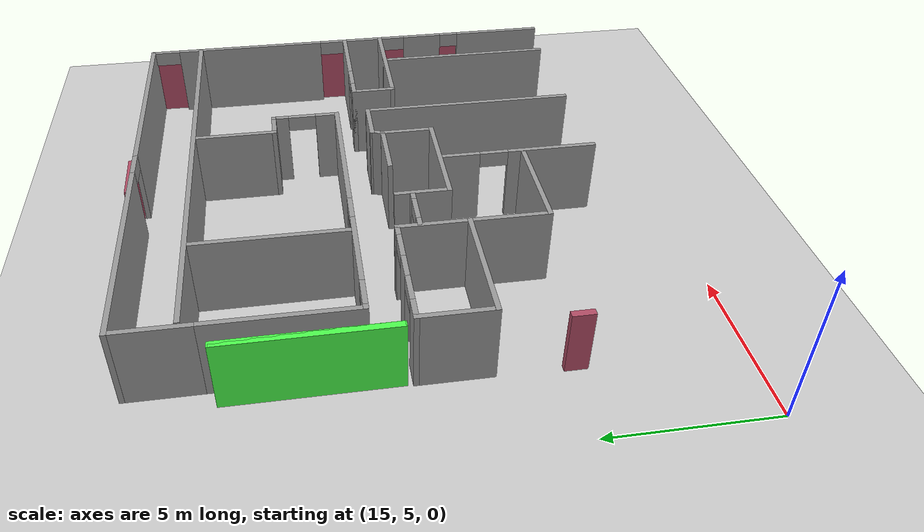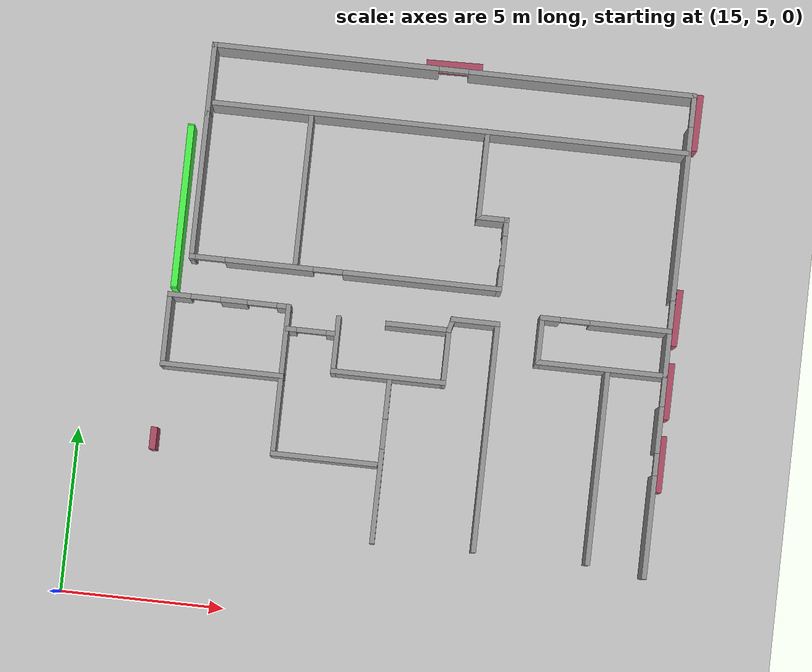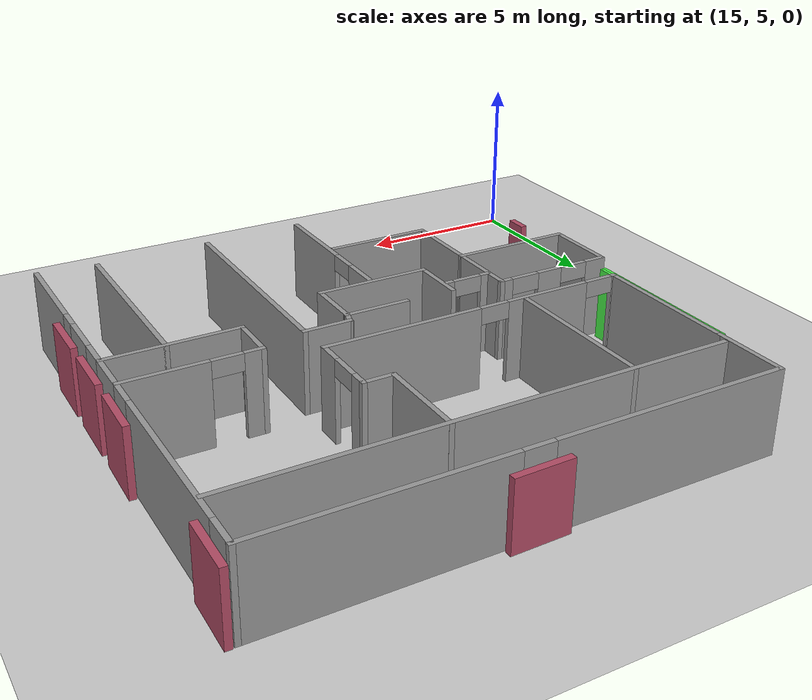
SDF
<sdf version="1.6">
 <world name="default">
  <model name="ground_plane">
   <pose>0 0 0.001 0 -0 0</pose>
   <static>1</static>
   <link name="link">
    <collision name="collision">
     <geometry><plane><normal>0 0 1</normal><size>100 100</size></plane></geometry>
     <surface><friction><ode><mu>100</mu><mu2>50</mu2></ode></friction></surface>
    </collision>
    <visual name="visual">
     <cast_shadows>0</cast_shadows>
     <geometry><plane><normal>0 0 1</normal><size>100 100</size></plane></geometry>
     <material>
      <script><uri>file://media/materials/scripts/gazebo.material</uri><name>Gazebo/Grey</name></script>
     </material>
    </visual>
   </link>
  </model>
  <model name="fin_se1f1.sdf">
   <pose>1.8125 -2.2901 0 0 -0 0</pose>
   <link name="Wall_16">
    <pose>30.7504 16.9246 0 0 -0 1.5708</pose>
    <visual name="Wall_16_Visual_0">
     <pose>-5.81054 0 1.25 0 -0 0</pose>
     <geometry><box><size>3.12893 0.15 2.5</size></box></geometry>
     <material>
      <script><uri>file://media/materials/scripts/gazebo.material</uri><name>Gazebo/Grey</name></script>
      <ambient>1 1 1 1</ambient>
     </material>
     <meta><layer>0</layer></meta>
    </visual>
    <collision name="Wall_16_Collision_0">
     <geometry><box><size>3.12893 0.15 2.5</size></box></geometry>
     <pose>-5.81054 0 1.25 0 -0 0</pose>
    </collision>
    <visual name="Wall_16_Visual_1">
     <pose>-2.86079 0 1.25 0 -0 0</pose>
     <geometry><box><size>1.41306 0.15 2.5</size></box></geometry>
     <material>
      <script><uri>file://media/materials/scripts/gazebo.material</uri><name>Gazebo/Grey</name></script>
      <ambient>1 1 1 1</ambient>
     </material>
     <meta><layer>0</layer></meta>
    </visual>
    <collision name="Wall_16_Collision_1">
     <geometry><box><size>1.41306 0.15 2.5</size></box></geometry>
     <pose>-2.86079 0 1.25 0 -0 0</pose>
    </collision>
    <visual name="Wall_16_Visual_2">
     <pose>-0.547733 0 1.25 0 -0 0</pose>
     <geometry><box><size>1.41306 0.15 2.5</size></box></geometry>
     <material>
      <script><uri>file://media/materials/scripts/gazebo.material</uri><name>Gazebo/Grey</name></script>
      <ambient>1 1 1 1</ambient>
     </material>
     <meta><layer>0</layer></meta>
    </visual>
    <collision name="Wall_16_Collision_2">
     <geometry><box><size>1.41306 0.15 2.5</size></box></geometry>
     <pose>-0.547733 0 1.25 0 -0 0</pose>
    </collision>
    <visual name="Wall_16_Visual_3">
     <pose>3.70629 0 1.25 0 -0 0</pose>
     <geometry><box><size>5.29498 0.15 2.5</size></box></geometry>
     <material>
      <script><uri>file://media/materials/scripts/gazebo.material</uri><name>Gazebo/Grey</name></script>
      <ambient>1 1 1 1</ambient>
     </material>
     <meta><layer>0</layer></meta>
    </visual>
    <collision name="Wall_16_Collision_3">
     <geometry><box><size>5.29498 0.15 2.5</size></box></geometry>
     <pose>3.70629 0 1.25 0 -0 0</pose>
    </collision>
    <visual name="Wall_16_Visual_4">
     <pose>7.31439 0 1.25 0 -0 0</pose>
     <geometry><box><size>0.121222 0.15 2.5</size></box></geometry>
     <material>
      <script><uri>file://media/materials/scripts/gazebo.material</uri><name>Gazebo/Grey</name></script>
      <ambient>1 1 1 1</ambient>
     </material>
     <meta><layer>0</layer></meta>
    </visual>
    <collision name="Wall_16_Collision_4">
     <geometry><box><size>0.121222 0.15 2.5</size></box></geometry>
     <pose>7.31439 0 1.25 0 -0 0</pose>
    </collision>
    <visual name="Wall_16_Visual_5">
     <pose>-3.9067 0 2.25 0 -0 0</pose>
     <geometry><box><size>0.678751 0.15 0.5</size></box></geometry>
     <material>
      <script><uri>file://media/materials/scripts/gazebo.material</uri><name>Gazebo/Grey</name></script>
      <ambient>1 1 1 1</ambient>
     </material>
     <meta><layer>0</layer></meta>
    </visual>
    <collision name="Wall_16_Collision_5">
     <geometry><box><size>0.678751 0.15 0.5</size></box></geometry>
     <pose>-3.9067 0 2.25 0 -0 0</pose>
    </collision>
    <visual name="Wall_16_Visual_6">
     <pose>-1.70426 0 2.25 0 -0 0</pose>
     <geometry><box><size>0.9 0.15 0.5</size></box></geometry>
     <material>
      <script><uri>file://media/materials/scripts/gazebo.material</uri><name>Gazebo/Grey</name></script>
      <ambient>1 1 1 1</ambient>
     </material>
     <meta><layer>0</layer></meta>
    </visual>
    <collision name="Wall_16_Collision_6">
     <geometry><box><size>0.9 0.15 0.5</size></box></geometry>
     <pose>-1.70426 0 2.25 0 -0 0</pose>
    </collision>
    <visual name="Wall_16_Visual_7">
     <pose>0.608797 0 2.25 0 -0 0</pose>
     <geometry><box><size>0.9 0.15 0.5</size></box></geometry>
     <material>
      <script><uri>file://media/materials/scripts/gazebo.material</uri><name>Gazebo/Grey</name></script>
      <ambient>1 1 1 1</ambient>
     </material>
     <meta><layer>0</layer></meta>
    </visual>
    <collision name="Wall_16_Collision_7">
     <geometry><box><size>0.9 0.15 0.5</size></box></geometry>
     <pose>0.608797 0 2.25 0 -0 0</pose>
    </collision>
    <visual name="Wall_16_Visual_8">
     <pose>6.80378 0 2.25 0 -0 0</pose>
     <geometry><box><size>0.9 0.15 0.5</size></box></geometry>
     <material>
      <script><uri>file://media/materials/scripts/gazebo.material</uri><name>Gazebo/Grey</name></script>
      <ambient>1 1 1 1</ambient>
     </material>
     <meta><layer>0</layer></meta>
    </visual>
    <collision name="Wall_16_Collision_8">
     <geometry><box><size>0.9 0.15 0.5</size></box></geometry>
     <pose>6.80378 0 2.25 0 -0 0</pose>
    </collision>
   </link>
   <link name="Wall_17">
    <pose>23.4504 24.2246 0 0 -0 3.14159</pose>
    <visual name="Wall_17_Visual_0">
     <pose>-3.90372 0 1.25 0 -0 0</pose>
     <geometry><box><size>6.94256 0.15 2.5</size></box></geometry>
     <material>
      <script><uri>file://media/materials/scripts/gazebo.material</uri><name>Gazebo/Grey</name></script>
      <ambient>1 1 1 1</ambient>
     </material>
     <meta><layer>0</layer></meta>
    </visual>
    <collision name="Wall_17_Collision_0">
     <geometry><box><size>6.94256 0.15 2.5</size></box></geometry>
     <pose>-3.90372 0 1.25 0 -0 0</pose>
    </collision>
    <visual name="Wall_17_Visual_1">
     <pose>3.92128 0 1.25 0 -0 0</pose>
     <geometry><box><size>6.90744 0.15 2.5</size></box></geometry>
     <material>
      <script><uri>file://media/materials/scripts/gazebo.material</uri><name>Gazebo/Grey</name></script>
      <ambient>1 1 1 1</ambient>
     </material>
     <meta><layer>0</layer></meta>
    </visual>
    <collision name="Wall_17_Collision_1">
     <geometry><box><size>6.90744 0.15 2.5</size></box></geometry>
     <pose>3.92128 0 1.25 0 -0 0</pose>
    </collision>
    <visual name="Wall_17_Visual_2">
     <pose>0.017557 0 2.25 0 -0 0</pose>
     <geometry><box><size>0.9 0.15 0.5</size></box></geometry>
     <material>
      <script><uri>file://media/materials/scripts/gazebo.material</uri><name>Gazebo/Grey</name></script>
      <ambient>1 1 1 1</ambient>
     </material>
     <meta><layer>0</layer></meta>
    </visual>
    <collision name="Wall_17_Collision_2">
     <geometry><box><size>0.9 0.15 0.5</size></box></geometry>
     <pose>0.017557 0 2.25 0 -0 0</pose>
    </collision>
   </link>
   <link name="Wall_18">
    <collision name="Wall_18_Collision">
     <geometry><box><size>2.25 0.15 2.5</size></box></geometry>
     <pose>0 0 1.25 0 -0 0</pose>
    </collision>
    <visual name="Wall_18_Visual">
     <pose>0 0 1.25 0 -0 0</pose>
     <geometry><box><size>2.25 0.15 2.5</size></box></geometry>
     <material>
      <script><uri>file://media/materials/scripts/gazebo.material</uri><name>Gazebo/Grey</name></script>
      <ambient>1 1 1 1</ambient>
     </material>
     <meta><layer>0</layer></meta>
    </visual>
    <pose>16.1504 23.1746 0 0 0 -1.5708</pose>
   </link>
   <link name="Wall_233">
    <pose>19.9645 15.9042 0.001 0 -0 0</pose>
    <visual name="Wall_233_Visual_0">
     <pose>-0.585512 0 1.25 0 -0 0</pose>
     <geometry><box><size>0.328976 0.15 2.5</size></box></geometry>
     <material>
      <script><uri>file://media/materials/scripts/gazebo.material</uri><name>Gazebo/Grey</name></script>
      <ambient>1 1 1 1</ambient>
     </material>
     <meta><layer>0</layer></meta>
    </visual>
    <collision name="Wall_233_Collision_0">
     <geometry><box><size>0.328976 0.15 2.5</size></box></geometry>
     <pose>-0.585512 0 1.25 0 -0 0</pose>
    </collision>
    <visual name="Wall_233_Visual_1">
     <pose>0.614488 0 1.25 0 -0 0</pose>
     <geometry><box><size>0.271024 0.15 2.5</size></box></geometry>
     <material>
      <script><uri>file://media/materials/scripts/gazebo.material</uri><name>Gazebo/Grey</name></script>
      <ambient>1 1 1 1</ambient>
     </material>
     <meta><layer>0</layer></meta>
    </visual>
    <collision name="Wall_233_Collision_1">
     <geometry><box><size>0.271024 0.15 2.5</size></box></geometry>
     <pose>0.614488 0 1.25 0 -0 0</pose>
    </collision>
    <visual name="Wall_233_Visual_2">
     <pose>0.028976 0 2.25 0 -0 0</pose>
     <geometry><box><size>0.9 0.15 0.5</size></box></geometry>
     <material>
      <script><uri>file://media/materials/scripts/gazebo.material</uri><name>Gazebo/Grey</name></script>
      <ambient>1 1 1 1</ambient>
     </material>
     <meta><layer>0</layer></meta>
    </visual>
    <collision name="Wall_233_Collision_2">
     <geometry><box><size>0.9 0.15 0.5</size></box></geometry>
     <pose>0.028976 0 2.25 0 -0 0</pose>
    </collision>
   </link>
   <link name="Wall_32">
    <collision name="Wall_32_Collision">
     <geometry><box><size>4 0.15 2.5</size></box></geometry>
     <pose>0 0 1.25 0 -0 0</pose>
    </collision>
    <visual name="Wall_32_Visual">
     <pose>0 0 1.25 0 -0 0</pose>
     <geometry><box><size>4 0.15 2.5</size></box></geometry>
     <material>
      <script><uri>file://media/materials/scripts/gazebo.material</uri><name>Gazebo/Grey</name></script>
      <ambient>1 1 1 1</ambient>
     </material>
     <meta><layer>0</layer></meta>
    </visual>
    <pose>28.8116 15.7048 0 0 -0 3.14159</pose>
   </link>
   <link name="Wall_33">
    <collision name="Wall_33_Collision">
     <geometry><box><size>1.5 0.15 2.5</size></box></geometry>
     <pose>0 0 1.25 0 -0 0</pose>
    </collision>
    <visual name="Wall_33_Visual">
     <pose>0 0 1.25 0 -0 0</pose>
     <geometry><box><size>1.5 0.15 2.5</size></box></geometry>
     <material>
      <script><uri>file://media/materials/scripts/gazebo.material</uri><name>Gazebo/Grey</name></script>
      <ambient>1 1 1 1</ambient>
     </material>
     <meta><layer>0</layer></meta>
    </visual>
    <pose>26.8866 16.3798 0 0 -0 1.5708</pose>
   </link>
   <link name="Wall_34">
    <pose>28.8116 17.0548 0.001 0 -0 0</pose>
    <visual name="Wall_34_Visual_0">
     <pose>-1.6918 0 1.25 0 -0 0</pose>
     <geometry><box><size>0.616404 0.15 2.5</size></box></geometry>
     <material>
      <script><uri>file://media/materials/scripts/gazebo.material</uri><name>Gazebo/Grey</name></script>
      <ambient>1 1 1 1</ambient>
     </material>
     <meta><layer>0</layer></meta>
    </visual>
    <collision name="Wall_34_Collision_0">
     <geometry><box><size>0.616404 0.15 2.5</size></box></geometry>
     <pose>-1.6918 0 1.25 0 -0 0</pose>
    </collision>
    <visual name="Wall_34_Visual_1">
     <pose>0.758202 0 1.25 0 -0 0</pose>
     <geometry><box><size>2.4836 0.15 2.5</size></box></geometry>
     <material>
      <script><uri>file://media/materials/scripts/gazebo.material</uri><name>Gazebo/Grey</name></script>
      <ambient>1 1 1 1</ambient>
     </material>
     <meta><layer>0</layer></meta>
    </visual>
    <collision name="Wall_34_Collision_1">
     <geometry><box><size>2.4836 0.15 2.5</size></box></geometry>
     <pose>0.758202 0 1.25 0 -0 0</pose>
    </collision>
    <visual name="Wall_34_Visual_2">
     <pose>-0.933596 0 2.25 0 -0 0</pose>
     <geometry><box><size>0.9 0.15 0.5</size></box></geometry>
     <material>
      <script><uri>file://media/materials/scripts/gazebo.material</uri><name>Gazebo/Grey</name></script>
      <ambient>1 1 1 1</ambient>
     </material>
     <meta><layer>0</layer></meta>
    </visual>
    <collision name="Wall_34_Collision_2">
     <geometry><box><size>0.9 0.15 0.5</size></box></geometry>
     <pose>-0.933596 0 2.25 0 -0 0</pose>
    </collision>
   </link>
   <link name="Wall_36">
    <collision name="Wall_36_Collision">
     <geometry><box><size>6 0.15 2.5</size></box></geometry>
     <pose>0 0 1.25 0 -0 0</pose>
    </collision>
    <visual name="Wall_36_Visual">
     <pose>0 0 1.25 0 -0 0</pose>
     <geometry><box><size>6 0.15 2.5</size></box></geometry>
     <material>
      <script><uri>file://media/materials/scripts/gazebo.material</uri><name>Gazebo/Grey</name></script>
      <ambient>1 1 1 1</ambient>
     </material>
     <meta><layer>0</layer></meta>
    </visual>
    <pose>29.0138 12.7798 0 0 0 -1.5708</pose>
   </link>
   <link name="Wall_38">
    <pose>17.4309 16.5662 0 0 -0 3.14159</pose>
    <visual name="Wall_38_Visual_0">
     <pose>-1.65937 0 1.25 0 -0 0</pose>
     <geometry><box><size>0.431262 0.15 2.5</size></box></geometry>
     <material>
      <script><uri>file://media/materials/scripts/gazebo.material</uri><name>Gazebo/Grey</name></script>
      <ambient>1 1 1 1</ambient>
     </material>
     <meta><layer>0</layer></meta>
    </visual>
    <collision name="Wall_38_Collision_0">
     <geometry><box><size>0.431262 0.15 2.5</size></box></geometry>
     <pose>-1.65937 0 1.25 0 -0 0</pose>
    </collision>
    <visual name="Wall_38_Visual_1">
     <pose>-0.138911 0 1.25 0 -0 0</pose>
     <geometry><box><size>0.809654 0.15 2.5</size></box></geometry>
     <material>
      <script><uri>file://media/materials/scripts/gazebo.material</uri><name>Gazebo/Grey</name></script>
      <ambient>1 1 1 1</ambient>
     </material>
     <meta><layer>0</layer></meta>
    </visual>
    <collision name="Wall_38_Collision_1">
     <geometry><box><size>0.809654 0.15 2.5</size></box></geometry>
     <pose>-0.138911 0 1.25 0 -0 0</pose>
    </collision>
    <visual name="Wall_38_Visual_2">
     <pose>1.52046 0 1.25 0 -0 0</pose>
     <geometry><box><size>0.709084 0.15 2.5</size></box></geometry>
     <material>
      <script><uri>file://media/materials/scripts/gazebo.material</uri><name>Gazebo/Grey</name></script>
      <ambient>1 1 1 1</ambient>
     </material>
     <meta><layer>0</layer></meta>
    </visual>
    <collision name="Wall_38_Collision_2">
     <geometry><box><size>0.709084 0.15 2.5</size></box></geometry>
     <pose>1.52046 0 1.25 0 -0 0</pose>
    </collision>
    <visual name="Wall_38_Visual_3">
     <pose>-0.993738 0 2.25 0 -0 0</pose>
     <geometry><box><size>0.9 0.15 0.5</size></box></geometry>
     <material>
      <script><uri>file://media/materials/scripts/gazebo.material</uri><name>Gazebo/Grey</name></script>
      <ambient>1 1 1 1</ambient>
     </material>
     <meta><layer>0</layer></meta>
    </visual>
    <collision name="Wall_38_Collision_3">
     <geometry><box><size>0.9 0.15 0.5</size></box></geometry>
     <pose>-0.993738 0 2.25 0 -0 0</pose>
    </collision>
    <visual name="Wall_38_Visual_4">
     <pose>0.715916 0 2.25 0 -0 0</pose>
     <geometry><box><size>0.9 0.15 0.5</size></box></geometry>
     <material>
      <script><uri>file://media/materials/scripts/gazebo.material</uri><name>Gazebo/Grey</name></script>
      <ambient>1 1 1 1</ambient>
     </material>
     <meta><layer>0</layer></meta>
    </visual>
    <collision name="Wall_38_Collision_4">
     <geometry><box><size>0.9 0.15 0.5</size></box></geometry>
     <pose>0.715916 0 2.25 0 -0 0</pose>
    </collision>
   </link>
   <link name="Wall_39">
    <collision name="Wall_39_Collision">
     <geometry><box><size>2.25 0.15 2.5</size></box></geometry>
     <pose>0 0 1.25 0 -0 0</pose>
    </collision>
    <visual name="Wall_39_Visual">
     <pose>0 0 1.25 0 -0 0</pose>
     <geometry><box><size>2.25 0.15 2.5</size></box></geometry>
     <material>
      <script><uri>file://media/materials/scripts/gazebo.material</uri><name>Gazebo/Grey</name></script>
      <ambient>1 1 1 1</ambient>
     </material>
     <meta><layer>0</layer></meta>
    </visual>
    <pose>15.6309 15.5162 0 0 0 -1.5708</pose>
   </link>
   <link name="Wall_40">
    <collision name="Wall_40_Collision">
     <geometry><box><size>3.75 0.15 2.5</size></box></geometry>
     <pose>0 0 1.25 0 -0 0</pose>
    </collision>
    <visual name="Wall_40_Visual">
     <pose>0 0 1.25 0 -0 0</pose>
     <geometry><box><size>3.75 0.15 2.5</size></box></geometry>
     <material>
      <script><uri>file://media/materials/scripts/gazebo.material</uri><name>Gazebo/Grey</name></script>
      <ambient>1 1 1 1</ambient>
     </material>
     <meta><layer>0</layer></meta>
    </visual>
    <pose>17.4309 14.4662 0.001 0 -0 0</pose>
   </link>
   <link name="Wall_41">
    <collision name="Wall_41_Collision">
     <geometry><box><size>2.25 0.15 2.5</size></box></geometry>
     <pose>0 0 1.25 0 -0 0</pose>
    </collision>
    <visual name="Wall_41_Visual">
     <pose>0 0 1.25 0 -0 0</pose>
     <geometry><box><size>2.25 0.15 2.5</size></box></geometry>
     <material>
      <script><uri>file://media/materials/scripts/gazebo.material</uri><name>Gazebo/Grey</name></script>
      <ambient>1 1 1 1</ambient>
     </material>
     <meta><layer>0</layer></meta>
    </visual>
    <pose>19.2309 15.5162 0 0 -0 1.5708</pose>
   </link>
   <link name="Wall_43">
    <collision name="Wall_43_Collision">
     <geometry><box><size>1.75 0.15 2.5</size></box></geometry>
     <pose>0 0 1.25 0 -0 0</pose>
    </collision>
    <visual name="Wall_43_Visual">
     <pose>0 0 1.25 0 -0 0</pose>
     <geometry><box><size>1.75 0.15 2.5</size></box></geometry>
     <material>
      <script><uri>file://media/materials/scripts/gazebo.material</uri><name>Gazebo/Grey</name></script>
      <ambient>1 1 1 1</ambient>
     </material>
     <meta><layer>0</layer></meta>
    </visual>
    <pose>20.7691 15.5816 0 0 0 -1.5708</pose>
   </link>
   <link name="Wall_44">
    <collision name="Wall_44_Collision">
     <geometry><box><size>3.5 0.15 2.5</size></box></geometry>
     <pose>0 0 1.25 0 -0 0</pose>
    </collision>
    <visual name="Wall_44_Visual">
     <pose>0 0 1.25 0 -0 0</pose>
     <geometry><box><size>3.5 0.15 2.5</size></box></geometry>
     <material>
      <script><uri>file://media/materials/scripts/gazebo.material</uri><name>Gazebo/Grey</name></script>
      <ambient>1 1 1 1</ambient>
     </material>
     <meta><layer>0</layer></meta>
    </visual>
    <pose>22.4441 14.7816 0.001 0 -0 0</pose>
   </link>
   <link name="Wall_45">
    <collision name="Wall_45_Collision">
     <geometry><box><size>1.75 0.15 2.5</size></box></geometry>
     <pose>0 0 1.25 0 -0 0</pose>
    </collision>
    <visual name="Wall_45_Visual">
     <pose>0 0 1.25 0 -0 0</pose>
     <geometry><box><size>1.75 0.15 2.5</size></box></geometry>
     <material>
      <script><uri>file://media/materials/scripts/gazebo.material</uri><name>Gazebo/Grey</name></script>
      <ambient>1 1 1 1</ambient>
     </material>
     <meta><layer>0</layer></meta>
    </visual>
    <pose>24.1191 15.5816 0 0 -0 1.5708</pose>
   </link>
   <link name="Wall_46">
    <collision name="Wall_46_Collision">
     <geometry><box><size>2 0.15 2.5</size></box></geometry>
     <pose>0 0 1.25 0 -0 0</pose>
    </collision>
    <visual name="Wall_46_Visual">
     <pose>0 0 1.25 0 -0 0</pose>
     <geometry><box><size>2 0.15 2.5</size></box></geometry>
     <material>
      <script><uri>file://media/materials/scripts/gazebo.material</uri><name>Gazebo/Grey</name></script>
      <ambient>1 1 1 1</ambient>
     </material>
     <meta><layer>0</layer></meta>
    </visual>
    <pose>23.1941 16.3816 0 0 -0 3.14159</pose>
   </link>
   <link name="Wall_48">
    <collision name="Wall_48_Collision">
     <geometry><box><size>0.5 0.15 2.5</size></box></geometry>
     <pose>0 0 1.25 0 -0 0</pose>
    </collision>
    <visual name="Wall_48_Visual">
     <pose>0 0 1.25 0 -0 0</pose>
     <geometry><box><size>0.5 0.15 2.5</size></box></geometry>
     <material>
      <script><uri>file://media/materials/scripts/gazebo.material</uri><name>Gazebo/Grey</name></script>
      <ambient>1 1 1 1</ambient>
     </material>
     <meta><layer>0</layer></meta>
    </visual>
    <pose>24.1643 16.5507 0 0 -0 1.309</pose>
   </link>
   <link name="Wall_49">
    <collision name="Wall_49_Collision">
     <geometry><box><size>1.5 0.15 2.5</size></box></geometry>
     <pose>0 0 1.25 0 -0 0</pose>
    </collision>
    <visual name="Wall_49_Visual">
     <pose>0 0 1.25 0 -0 0</pose>
     <geometry><box><size>1.5 0.15 2.5</size></box></geometry>
     <material>
      <script><uri>file://media/materials/scripts/gazebo.material</uri><name>Gazebo/Grey</name></script>
      <ambient>1 1 1 1</ambient>
     </material>
     <meta><layer>0</layer></meta>
    </visual>
    <pose>24.8846 16.7197 0.001 0 -0 0</pose>
   </link>
   <link name="Wall_50">
    <collision name="Wall_50_Collision">
     <geometry><box><size>7 0.15 2.5</size></box></geometry>
     <pose>0 0 1.25 0 -0 0</pose>
    </collision>
    <visual name="Wall_50_Visual">
     <pose>0 0 1.25 0 -0 0</pose>
     <geometry><box><size>7 0.15 2.5</size></box></geometry>
     <material>
      <script><uri>file://media/materials/scripts/gazebo.material</uri><name>Gazebo/Grey</name></script>
      <ambient>1 1 1 1</ambient>
     </material>
     <meta><layer>0</layer></meta>
    </visual>
    <pose>25.5596 13.2947 0 0 0 -1.5708</pose>
   </link>
   <link name="Wall_52">
    <collision name="Wall_52_Collision">
     <geometry><box><size>2.5 0.15 2.5</size></box></geometry>
     <pose>0 0 1.25 0 -0 0</pose>
    </collision>
    <visual name="Wall_52_Visual">
     <pose>0 0 1.25 0 -0 0</pose>
     <geometry><box><size>2.5 0.15 2.5</size></box></geometry>
     <material>
      <script><uri>file://media/materials/scripts/gazebo.material</uri><name>Gazebo/Grey</name></script>
      <ambient>1 1 1 1</ambient>
     </material>
     <meta><layer>0</layer></meta>
    </visual>
    <pose>19.2309 13.2912 0 0 0 -1.5708</pose>
   </link>
   <link name="Wall_53">
    <collision name="Wall_53_Collision">
     <geometry><box><size>3.25 0.15 2.5</size></box></geometry>
     <pose>0 0 1.25 0 -0 0</pose>
    </collision>
    <visual name="Wall_53_Visual">
     <pose>0 0 1.25 0 -0 0</pose>
     <geometry><box><size>3.25 0.15 2.5</size></box></geometry>
     <material>
      <script><uri>file://media/materials/scripts/gazebo.material</uri><name>Gazebo/Grey</name></script>
      <ambient>1 1 1 1</ambient>
     </material>
     <meta><layer>0</layer></meta>
    </visual>
    <pose>20.7809 12.1162 0.001 0 -0 0</pose>
   </link>
   <link name="Wall_55">
    <pose>22.4918 12.2338 0 0 0 -1.5708</pose>
    <visual name="Wall_55_Visual_0">
     <pose>-1.8821 0 1.25 0 -0 0</pose>
     <geometry><box><size>1.2358 0.15 2.5</size></box></geometry>
     <material>
      <script><uri>file://media/materials/scripts/gazebo.material</uri><name>Gazebo/Grey</name></script>
      <ambient>1 1 1 1</ambient>
     </material>
     <meta><layer>0</layer></meta>
    </visual>
    <collision name="Wall_55_Collision_0">
     <geometry><box><size>1.2358 0.15 2.5</size></box></geometry>
     <pose>-1.8821 0 1.25 0 -0 0</pose>
    </collision>
    <visual name="Wall_55_Visual_1">
     <pose>1.0679 0 1.25 0 -0 0</pose>
     <geometry><box><size>2.8642 0.15 2.5</size></box></geometry>
     <material>
      <script><uri>file://media/materials/scripts/gazebo.material</uri><name>Gazebo/Grey</name></script>
      <ambient>1 1 1 1</ambient>
     </material>
     <meta><layer>0</layer></meta>
    </visual>
    <collision name="Wall_55_Collision_1">
     <geometry><box><size>2.8642 0.15 2.5</size></box></geometry>
     <pose>1.0679 0 1.25 0 -0 0</pose>
    </collision>
    <visual name="Wall_55_Visual_2">
     <pose>-0.814197 0 2.25 0 -0 0</pose>
     <geometry><box><size>0.9 0.15 0.5</size></box></geometry>
     <material>
      <script><uri>file://media/materials/scripts/gazebo.material</uri><name>Gazebo/Grey</name></script>
      <ambient>1 1 1 1</ambient>
     </material>
     <meta><layer>0</layer></meta>
    </visual>
    <collision name="Wall_55_Collision_2">
     <geometry><box><size>0.9 0.15 0.5</size></box></geometry>
     <pose>-0.814197 0 2.25 0 -0 0</pose>
    </collision>
   </link>
   <link name="Wall_57">
    <collision name="Wall_57_Collision">
     <geometry><box><size>4.5 0.15 2.5</size></box></geometry>
     <pose>0 0 1.25 0 -0 0</pose>
    </collision>
    <visual name="Wall_57_Visual">
     <pose>0 0 1.25 0 -0 0</pose>
     <geometry><box><size>4.5 0.15 2.5</size></box></geometry>
     <material>
      <script><uri>file://media/materials/scripts/gazebo.material</uri><name>Gazebo/Grey</name></script>
      <ambient>1 1 1 1</ambient>
     </material>
     <meta><layer>0</layer></meta>
    </visual>
    <pose>16.1504 19.9496 0 0 0 -1.5708</pose>
   </link>
   <link name="Wall_58">
    <pose>20.8254 17.7746 0.001 0 -0 0</pose>
    <visual name="Wall_58_Visual_0">
     <pose>-4.65524 0 1.25 0 -0 0</pose>
     <geometry><box><size>0.189509 0.15 2.5</size></box></geometry>
     <material>
      <script><uri>file://media/materials/scripts/gazebo.material</uri><name>Gazebo/Grey</name></script>
      <ambient>1 1 1 1</ambient>
     </material>
     <meta><layer>0</layer></meta>
    </visual>
    <collision name="Wall_58_Collision_0">
     <geometry><box><size>0.189509 0.15 2.5</size></box></geometry>
     <pose>-4.65524 0 1.25 0 -0 0</pose>
    </collision>
    <visual name="Wall_58_Visual_1">
     <pose>-2.32038 0 1.25 0 -0 0</pose>
     <geometry><box><size>2.68022 0.15 2.5</size></box></geometry>
     <material>
      <script><uri>file://media/materials/scripts/gazebo.material</uri><name>Gazebo/Grey</name></script>
      <ambient>1 1 1 1</ambient>
     </material>
     <meta><layer>0</layer></meta>
    </visual>
    <collision name="Wall_58_Collision_1">
     <geometry><box><size>2.68022 0.15 2.5</size></box></geometry>
     <pose>-2.32038 0 1.25 0 -0 0</pose>
    </collision>
    <visual name="Wall_58_Visual_2">
     <pose>2.33486 0 1.25 0 -0 0</pose>
     <geometry><box><size>4.83028 0.15 2.5</size></box></geometry>
     <material>
      <script><uri>file://media/materials/scripts/gazebo.material</uri><name>Gazebo/Grey</name></script>
      <ambient>1 1 1 1</ambient>
     </material>
     <meta><layer>0</layer></meta>
    </visual>
    <collision name="Wall_58_Collision_2">
     <geometry><box><size>4.83028 0.15 2.5</size></box></geometry>
     <pose>2.33486 0 1.25 0 -0 0</pose>
    </collision>
    <visual name="Wall_58_Visual_3">
     <pose>-4.11049 0 2.25 0 -0 0</pose>
     <geometry><box><size>0.9 0.15 0.5</size></box></geometry>
     <material>
      <script><uri>file://media/materials/scripts/gazebo.material</uri><name>Gazebo/Grey</name></script>
      <ambient>1 1 1 1</ambient>
     </material>
     <meta><layer>0</layer></meta>
    </visual>
    <collision name="Wall_58_Collision_3">
     <geometry><box><size>0.9 0.15 0.5</size></box></geometry>
     <pose>-4.11049 0 2.25 0 -0 0</pose>
    </collision>
    <visual name="Wall_58_Visual_4">
     <pose>-0.530275 0 2.25 0 -0 0</pose>
     <geometry><box><size>0.9 0.15 0.5</size></box></geometry>
     <material>
      <script><uri>file://media/materials/scripts/gazebo.material</uri><name>Gazebo/Grey</name></script>
      <ambient>1 1 1 1</ambient>
     </material>
     <meta><layer>0</layer></meta>
    </visual>
    <collision name="Wall_58_Collision_4">
     <geometry><box><size>0.9 0.15 0.5</size></box></geometry>
     <pose>-0.530275 0 2.25 0 -0 0</pose>
    </collision>
   </link>
   <link name="Wall_59">
    <pose>25.5004 18.8246 0 0 -0 1.5708</pose>
    <visual name="Wall_59_Visual_0">
     <pose>-0.729127 0 1.25 0 -0 0</pose>
     <geometry><box><size>0.791747 0.15 2.5</size></box></geometry>
     <material>
      <script><uri>file://media/materials/scripts/gazebo.material</uri><name>Gazebo/Grey</name></script>
      <ambient>1 1 1 1</ambient>
     </material>
     <meta><layer>0</layer></meta>
    </visual>
    <collision name="Wall_59_Collision_0">
     <geometry><box><size>0.791747 0.15 2.5</size></box></geometry>
     <pose>-0.729127 0 1.25 0 -0 0</pose>
    </collision>
    <visual name="Wall_59_Visual_1">
     <pose>0.845873 0 1.25 0 -0 0</pose>
     <geometry><box><size>0.558253 0.15 2.5</size></box></geometry>
     <material>
      <script><uri>file://media/materials/scripts/gazebo.material</uri><name>Gazebo/Grey</name></script>
      <ambient>1 1 1 1</ambient>
     </material>
     <meta><layer>0</layer></meta>
    </visual>
    <collision name="Wall_59_Collision_1">
     <geometry><box><size>0.558253 0.15 2.5</size></box></geometry>
     <pose>0.845873 0 1.25 0 -0 0</pose>
    </collision>
    <visual name="Wall_59_Visual_2">
     <pose>0.116747 0 2.25 0 -0 0</pose>
     <geometry><box><size>0.9 0.15 0.5</size></box></geometry>
     <material>
      <script><uri>file://media/materials/scripts/gazebo.material</uri><name>Gazebo/Grey</name></script>
      <ambient>1 1 1 1</ambient>
     </material>
     <meta><layer>0</layer></meta>
    </visual>
    <collision name="Wall_59_Collision_2">
     <geometry><box><size>0.9 0.15 0.5</size></box></geometry>
     <pose>0.116747 0 2.25 0 -0 0</pose>
    </collision>
   </link>
   <link name="Wall_60">
    <collision name="Wall_60_Collision">
     <geometry><box><size>1 0.15 2.5</size></box></geometry>
     <pose>0 0 1.25 0 -0 0</pose>
    </collision>
    <visual name="Wall_60_Visual">
     <pose>0 0 1.25 0 -0 0</pose>
     <geometry><box><size>1 0.15 2.5</size></box></geometry>
     <material>
      <script><uri>file://media/materials/scripts/gazebo.material</uri><name>Gazebo/Grey</name></script>
      <ambient>1 1 1 1</ambient>
     </material>
     <meta><layer>0</layer></meta>
    </visual>
    <pose>25.0754 19.8746 0 0 -0 3.14159</pose>
   </link>
   <link name="Wall_61">
    <collision name="Wall_61_Collision">
     <geometry><box><size>2.75 0.15 2.5</size></box></geometry>
     <pose>0 0 1.25 0 -0 0</pose>
    </collision>
    <visual name="Wall_61_Visual">
     <pose>0 0 1.25 0 -0 0</pose>
     <geometry><box><size>2.75 0.15 2.5</size></box></geometry>
     <material>
      <script><uri>file://media/materials/scripts/gazebo.material</uri><name>Gazebo/Grey</name></script>
      <ambient>1 1 1 1</ambient>
     </material>
     <meta><layer>0</layer></meta>
    </visual>
    <pose>24.6504 21.1746 0 0 -0 1.5708</pose>
   </link>
   <link name="Wall_63">
    <collision name="Wall_63_Collision">
     <geometry><box><size>14.5 0.15 2.5</size></box></geometry>
     <pose>0 0 1.25 0 -0 0</pose>
    </collision>
    <visual name="Wall_63_Visual">
     <pose>0 0 1.25 0 -0 0</pose>
     <geometry><box><size>14.5 0.15 2.5</size></box></geometry>
     <material>
      <script><uri>file://media/materials/scripts/gazebo.material</uri><name>Gazebo/Grey</name></script>
      <ambient>1 1 1 1</ambient>
     </material>
     <meta><layer>0</layer></meta>
    </visual>
    <pose>23.514 22.4729 0.001 0 -0 0</pose>
   </link>
   <link name="Wall_65">
    <collision name="Wall_65_Collision">
     <geometry><box><size>4.75 0.15 2.5</size></box></geometry>
     <pose>0 0 1.25 0 -0 0</pose>
    </collision>
    <visual name="Wall_65_Visual">
     <pose>0 0 1.25 0 -0 0</pose>
     <geometry><box><size>4.75 0.15 2.5</size></box></geometry>
     <material>
      <script><uri>file://media/materials/scripts/gazebo.material</uri><name>Gazebo/Grey</name></script>
      <ambient>1 1 1 1</ambient>
     </material>
     <meta><layer>0</layer></meta>
    </visual>
    <pose>19.2924 20.1729 0 0 0 -1.5708</pose>
   </link>
   <static>1</static>
  </model>
  <model name="doorOutside_clone_7">
   <link name="link">
    <pose>0.155539 -0.366282 0.216958 0 -0 0</pose>
    <inertial>
     <mass>2.13199</mass>
     <inertia>
      <ixx>0.452656</ixx>
      <ixy>0</ixy>
      <ixz>0</ixz>
      <iyy>0.796738</iyy>
      <iyz>0</iyz>
      <izz>0.699414</izz>
     </inertia>
     <pose>0 0 0.001 0 -0 0</pose>
    </inertial>
    <visual name="visual">
     <geometry><box><size>1.71368 0.198843 2.05986</size></box></geometry>
     <material>
      <script><name>Gazebo/Grey</name><uri>file://media/materials/scripts/gazebo.material</uri></script>
      <ambient>0.7 0.3 0.4 1</ambient>
      <diffuse>0.7 0.7 0.7 1</diffuse>
      <specular>0.01 0.01 0.01 1</specular>
      <emissive>0 0 0 1</emissive>
      <shader type="vertex"><normal_map>__default__</normal_map></shader>
      <lighting>0</lighting>
     </material>
     <pose>0 0 0.001 0 -0 0</pose>
    </visual>
    <collision name="collision">
     <pose>0 0 0.001 0 -0 0</pose>
     <geometry><box><size>1.71368 0.198843 2.05986</size></box></geometry>
     <surface>
      <friction>
       <ode><mu>1</mu><mu2>1</mu2><fdir1>0 0 0</fdir1><slip1>0</slip1><slip2>0</slip2></ode>
       <torsional>
        <coefficient>1</coefficient>
        <patch_radius>0</patch_radius>
        <surface_radius>0</surface_radius>
        <use_patch_radius>1</use_patch_radius>
        <ode><slip>0</slip></ode>
       </torsional>
      </friction>
      <bounce><restitution_coefficient>0</restitution_coefficient><threshold>1e+06</threshold></bounce>
      <contact>
       <collide_without_contact>0</collide_without_contact>
       <collide_without_contact_bitmask>1</collide_without_contact_bitmask>
       <collide_bitmask>1</collide_bitmask>
       <ode>
        <soft_cfm>0</soft_cfm>
        <soft_erp>0.2</soft_erp>
        <kp>1e+13</kp>
        <kd>1</kd>
        <max_vel>0.01</max_vel>
        <min_depth>0</min_depth>
       </ode>
       <bullet>
        <split_impulse>1</split_impulse>
        <split_impulse_penetration_threshold>-0.01</split_impulse_penetration_threshold>
        <soft_cfm>0</soft_cfm>
        <soft_erp>0.2</soft_erp>
        <kp>1e+13</kp>
        <kd>1</kd>
       </bullet>
      </contact>
     </surface>
    </collision>
   </link>
   <static>1</static>
   <pose>25.0895 22.499 0.812972 0 1e-06 0.023096</pose>
  </model>
  <model name="doorOutside_clone_8">
   <link name="link">
    <pose>0.155539 -0.366282 0.216958 0 -0 0</pose>
    <inertial>
     <mass>2.13199</mass>
     <inertia>
      <ixx>0.452656</ixx>
      <ixy>0</ixy>
      <ixz>0</ixz>
      <iyy>0.796738</iyy>
      <iyz>0</iyz>
      <izz>0.699414</izz>
     </inertia>
     <pose>0 0 0.001 0 -0 0</pose>
    </inertial>
    <visual name="visual">
     <geometry><box><size>1.71368 0.198843 2.05986</size></box></geometry>
     <material>
      <script><name>Gazebo/Grey</name><uri>file://media/materials/scripts/gazebo.material</uri></script>
      <ambient>0.7 0.3 0.4 1</ambient>
      <diffuse>0.7 0.7 0.7 1</diffuse>
      <specular>0.01 0.01 0.01 1</specular>
      <emissive>0 0 0 1</emissive>
      <shader type="vertex"><normal_map>__default__</normal_map></shader>
      <lighting>0</lighting>
     </material>
     <pose>0 0 0.001 0 -0 0</pose>
    </visual>
    <collision name="collision">
     <pose>0 0 0.001 0 -0 0</pose>
     <geometry><box><size>1.71368 0.198843 2.05986</size></box></geometry>
     <surface>
      <friction>
       <ode><mu>1</mu><mu2>1</mu2><fdir1>0 0 0</fdir1><slip1>0</slip1><slip2>0</slip2></ode>
       <torsional>
        <coefficient>1</coefficient>
        <patch_radius>0</patch_radius>
        <surface_radius>0</surface_radius>
        <use_patch_radius>1</use_patch_radius>
        <ode><slip>0</slip></ode>
       </torsional>
      </friction>
      <bounce><restitution_coefficient>0</restitution_coefficient><threshold>1e+06</threshold></bounce>
      <contact>
       <collide_without_contact>0</collide_without_contact>
       <collide_without_contact_bitmask>1</collide_without_contact_bitmask>
       <collide_bitmask>1</collide_bitmask>
       <ode>
        <soft_cfm>0</soft_cfm>
        <soft_erp>0.2</soft_erp>
        <kp>1e+13</kp>
        <kd>1</kd>
        <max_vel>0.01</max_vel>
        <min_depth>0</min_depth>
       </ode>
       <bullet>
        <split_impulse>1</split_impulse>
        <split_impulse_penetration_threshold>-0.01</split_impulse_penetration_threshold>
        <soft_cfm>0</soft_cfm>
        <soft_erp>0.2</soft_erp>
        <kp>1e+13</kp>
        <kd>1</kd>
       </bullet>
      </contact>
     </surface>
    </collision>
   </link>
   <static>1</static>
   <pose>32.3828 21.0196 0.812962 -1e-06 5e-06 1.55393</pose>
  </model>
  <model name="doorOutside_clone_8_clone">
   <link name="link">
    <pose>0.155539 -0.366282 0.216958 0 -0 0</pose>
    <inertial>
     <mass>2.13199</mass>
     <inertia>
      <ixx>0.452656</ixx>
      <ixy>0</ixy>
      <ixz>0</ixz>
      <iyy>0.796738</iyy>
      <iyz>0</iyz>
      <izz>0.699414</izz>
     </inertia>
     <pose>0 0 0.001 0 -0 0</pose>
    </inertial>
    <visual name="visual">
     <geometry><box><size>1.71368 0.198843 2.05986</size></box></geometry>
     <material>
      <script><name>Gazebo/Grey</name><uri>file://media/materials/scripts/gazebo.material</uri></script>
      <ambient>0.7 0.3 0.4 1</ambient>
      <diffuse>0.7 0.7 0.7 1</diffuse>
      <specular>0.01 0.01 0.01 1</specular>
      <emissive>0 0 0 1</emissive>
      <shader type="vertex"><normal_map>__default__</normal_map></shader>
      <lighting>0</lighting>
     </material>
     <pose>0 0 0.001 0 -0 0</pose>
    </visual>
    <collision name="collision">
     <pose>0 0 0.001 0 -0 0</pose>
     <geometry><box><size>1.71368 0.198843 2.05986</size></box></geometry>
     <surface>
      <friction>
       <ode><mu>1</mu><mu2>1</mu2><fdir1>0 0 0</fdir1><slip1>0</slip1><slip2>0</slip2></ode>
       <torsional>
        <coefficient>1</coefficient>
        <patch_radius>0</patch_radius>
        <surface_radius>0</surface_radius>
        <use_patch_radius>1</use_patch_radius>
        <ode><slip>0</slip></ode>
       </torsional>
      </friction>
      <bounce><restitution_coefficient>0</restitution_coefficient><threshold>1e+06</threshold></bounce>
      <contact>
       <collide_without_contact>0</collide_without_contact>
       <collide_without_contact_bitmask>1</collide_without_contact_bitmask>
       <collide_bitmask>1</collide_bitmask>
       <ode>
        <soft_cfm>0</soft_cfm>
        <soft_erp>0.2</soft_erp>
        <kp>1e+13</kp>
        <kd>1</kd>
        <max_vel>0.01</max_vel>
        <min_depth>0</min_depth>
       </ode>
       <bullet>
        <split_impulse>1</split_impulse>
        <split_impulse_penetration_threshold>-0.01</split_impulse_penetration_threshold>
        <soft_cfm>0</soft_cfm>
        <soft_erp>0.2</soft_erp>
        <kp>1e+13</kp>
        <kd>1</kd>
       </bullet>
      </contact>
     </surface>
    </collision>
   </link>
   <static>1</static>
   <pose>32.3878 15.0646 0.812973 1e-06 1e-06 1.55384</pose>
  </model>
  <model name="doorOutside_clone_8_clone_0">
   <link name="link">
    <pose>0.155539 -0.366282 0.216958 0 -0 0</pose>
    <inertial>
     <mass>2.13199</mass>
     <inertia>
      <ixx>0.452656</ixx>
      <ixy>0</ixy>
      <ixz>0</ixz>
      <iyy>0.796738</iyy>
      <iyz>0</iyz>
      <izz>0.699414</izz>
     </inertia>
     <pose>0 0 0.001 0 -0 0</pose>
    </inertial>
    <visual name="visual">
     <geometry><box><size>1.71368 0.198843 2.05986</size></box></geometry>
     <material>
      <script><name>Gazebo/Grey</name><uri>file://media/materials/scripts/gazebo.material</uri></script>
      <ambient>0.7 0.3 0.4 1</ambient>
      <diffuse>0.7 0.7 0.7 1</diffuse>
      <specular>0.01 0.01 0.01 1</specular>
      <emissive>0 0 0 1</emissive>
      <shader type="vertex"><normal_map>__default__</normal_map></shader>
      <lighting>0</lighting>
     </material>
     <pose>0 0 0.001 0 -0 0</pose>
    </visual>
    <collision name="collision">
     <pose>0 0 0.001 0 -0 0</pose>
     <geometry><box><size>1.71368 0.198843 2.05986</size></box></geometry>
     <surface>
      <friction>
       <ode><mu>1</mu><mu2>1</mu2><fdir1>0 0 0</fdir1><slip1>0</slip1><slip2>0</slip2></ode>
       <torsional>
        <coefficient>1</coefficient>
        <patch_radius>0</patch_radius>
        <surface_radius>0</surface_radius>
        <use_patch_radius>1</use_patch_radius>
        <ode><slip>0</slip></ode>
       </torsional>
      </friction>
      <bounce><restitution_coefficient>0</restitution_coefficient><threshold>1e+06</threshold></bounce>
      <contact>
       <collide_without_contact>0</collide_without_contact>
       <collide_without_contact_bitmask>1</collide_without_contact_bitmask>
       <collide_bitmask>1</collide_bitmask>
       <ode>
        <soft_cfm>0</soft_cfm>
        <soft_erp>0.2</soft_erp>
        <kp>1e+13</kp>
        <kd>1</kd>
        <max_vel>0.01</max_vel>
        <min_depth>0</min_depth>
       </ode>
       <bullet>
        <split_impulse>1</split_impulse>
        <split_impulse_penetration_threshold>-0.01</split_impulse_penetration_threshold>
        <soft_cfm>0</soft_cfm>
        <soft_erp>0.2</soft_erp>
        <kp>1e+13</kp>
        <kd>1</kd>
       </bullet>
      </contact>
     </surface>
    </collision>
   </link>
   <static>1</static>
   <pose>32.3755 12.8211 0.812972 -1e-06 0 1.56458</pose>
  </model>
  <model name="doorOutside_clone_8_clone_1">
   <link name="link">
    <pose>0.155539 -0.366282 0.216958 0 -0 0</pose>
    <inertial>
     <mass>2.13199</mass>
     <inertia>
      <ixx>0.452656</ixx>
      <ixy>0</ixy>
      <ixz>0</ixz>
      <iyy>0.796738</iyy>
      <iyz>0</iyz>
      <izz>0.699414</izz>
     </inertia>
     <pose>0 0 0.001 0 -0 0</pose>
    </inertial>
    <visual name="visual">
     <geometry><box><size>1.71368 0.198843 2.05986</size></box></geometry>
     <material>
      <script><name>Gazebo/Grey</name><uri>file://media/materials/scripts/gazebo.material</uri></script>
      <ambient>0.7 0.3 0.4 1</ambient>
      <diffuse>0.7 0.7 0.7 1</diffuse>
      <specular>0.01 0.01 0.01 1</specular>
      <emissive>0 0 0 1</emissive>
      <shader type="vertex"><normal_map>__default__</normal_map></shader>
      <lighting>0</lighting>
     </material>
     <pose>0 0 0.001 0 -0 0</pose>
    </visual>
    <collision name="collision">
     <pose>0 0 0.001 0 -0 0</pose>
     <geometry><box><size>1.71368 0.198843 2.05986</size></box></geometry>
     <surface>
      <friction>
       <ode><mu>1</mu><mu2>1</mu2><fdir1>0 0 0</fdir1><slip1>0</slip1><slip2>0</slip2></ode>
       <torsional>
        <coefficient>1</coefficient>
        <patch_radius>0</patch_radius>
        <surface_radius>0</surface_radius>
        <use_patch_radius>1</use_patch_radius>
        <ode><slip>0</slip></ode>
       </torsional>
      </friction>
      <bounce><restitution_coefficient>0</restitution_coefficient><threshold>1e+06</threshold></bounce>
      <contact>
       <collide_without_contact>0</collide_without_contact>
       <collide_without_contact_bitmask>1</collide_without_contact_bitmask>
       <collide_bitmask>1</collide_bitmask>
       <ode>
        <soft_cfm>0</soft_cfm>
        <soft_erp>0.2</soft_erp>
        <kp>1e+13</kp>
        <kd>1</kd>
        <max_vel>0.01</max_vel>
        <min_depth>0</min_depth>
       </ode>
       <bullet>
        <split_impulse>1</split_impulse>
        <split_impulse_penetration_threshold>-0.01</split_impulse_penetration_threshold>
        <soft_cfm>0</soft_cfm>
        <soft_erp>0.2</soft_erp>
        <kp>1e+13</kp>
        <kd>1</kd>
       </bullet>
      </contact>
     </surface>
    </collision>
   </link>
   <static>1</static>
   <pose>32.3711 10.603 0.812972 0 -0 1.57076</pose>
  </model>
  <model name="wall_static_1_clone_0">
   <link name="link">
    <inertial>
     <mass>1</mass>
     <inertia>
      <ixx>0.166667</ixx>
      <ixy>0</ixy>
      <ixz>0</ixz>
      <iyy>0.166667</iyy>
      <iyz>0</iyz>
      <izz>0.166667</izz>
     </inertia>
     <pose>0 0 0.001 0 -0 0</pose>
    </inertial>
    <visual name="ModelPreview_1::link::visual_1">
     <geometry><box><size>4.92373 0.195361 2.3796</size></box></geometry>
     <material>
      <script><name>Gazebo/Grey</name><uri>file://media/materials/scripts/gazebo.material</uri></script>
      <ambient>0.3 1 0.3 1</ambient>
      <diffuse>0.7 0.7 0.7 1</diffuse>
      <specular>0.01 0.01 0.01 1</specular>
      <emissive>0 0 0 1</emissive>
      <shader type="vertex"><normal_map>__default__</normal_map></shader>
     </material>
     <pose>0 0 0.001 0 -0 0</pose>
    </visual>
    <visual name="visual">
     <geometry><box><size>5 0.2 2.3796</size></box></geometry>
     <material>
      <script><name>Gazebo/Grey</name><uri>file://media/materials/scripts/gazebo.material</uri></script>
      <ambient>0.3 1 0.3 1</ambient>
      <diffuse>0.7 0.7 0.7 1</diffuse>
      <specular>0.01 0.01 0.01 1</specular>
      <emissive>0 0 0 1</emissive>
      <shader type="vertex"><normal_map>__default__</normal_map></shader>
     </material>
     <pose>0 0 0.001 0 -0 0</pose>
    </visual>
    <collision name="collision">
     <pose>0 0 0.001 0 -0 0</pose>
     <geometry><box><size>4.92373 0.195361 2.3796</size></box></geometry>
     <surface>
      <friction>
       <ode><mu>1</mu><mu2>1</mu2><fdir1>0 0 0</fdir1><slip1>0</slip1><slip2>0</slip2></ode>
       <torsional>
        <coefficient>1</coefficient>
        <patch_radius>0</patch_radius>
        <surface_radius>0</surface_radius>
        <use_patch_radius>1</use_patch_radius>
        <ode><slip>0</slip></ode>
       </torsional>
      </friction>
      <bounce><restitution_coefficient>0</restitution_coefficient><threshold>1e+06</threshold></bounce>
      <contact>
       <collide_without_contact>0</collide_without_contact>
       <collide_without_contact_bitmask>1</collide_without_contact_bitmask>
       <collide_bitmask>1</collide_bitmask>
       <ode>
        <soft_cfm>0</soft_cfm>
        <soft_erp>0.2</soft_erp>
        <kp>1e+13</kp>
        <kd>1</kd>
        <max_vel>0.01</max_vel>
        <min_depth>0</min_depth>
       </ode>
       <bullet>
        <split_impulse>1</split_impulse>
        <split_impulse_penetration_threshold>-0.01</split_impulse_penetration_threshold>
        <soft_cfm>0</soft_cfm>
        <soft_erp>0.2</soft_erp>
        <kp>1e+13</kp>
        <kd>1</kd>
       </bullet>
      </contact>
     </surface>
    </collision>
   </link>
   <static>1</static>
   <pose>17.513 16.9885 1.02486 0 -0 1.57305</pose>
  </model>
  <model name="doorInside_19">
   <link name="link">
    <pose>0.712274 -0.220649 0.216958 0 -0 0</pose>
    <inertial>
     <mass>0.840612</mass>
     <inertia>
      <ixx>0.178476</ixx>
      <ixy>0</ixy>
      <ixz>0</ixz>
      <iyy>0.140406</iyy>
      <iyz>0</iyz>
      <izz>0.102032</izz>
     </inertia>
    </inertial>
    <visual name="visual">
     <geometry><box><size>0.675678 0.198843 2.05986</size></box></geometry>
     <material>
      <script><name>Gazebo/Grey</name><uri>file://media/materials/scripts/gazebo.material</uri></script>
      <ambient>0.7 0.3 0.4 1</ambient>
      <diffuse>0.7 0.7 0.7 1</diffuse>
      <specular>0.01 0.01 0.01 1</specular>
      <emissive>1 0 0 1</emissive>
      <shader type="vertex"><normal_map>__default__</normal_map></shader>
      <lighting>0</lighting>
     </material>
    </visual>
    <collision name="collision">
     <geometry><box><size>0.675678 0.198843 2.05986</size></box></geometry>
     <surface>
      <friction>
       <ode><mu>1</mu><mu2>1</mu2><fdir1>0 0 0</fdir1><slip1>0</slip1><slip2>0</slip2></ode>
       <torsional>
        <coefficient>1</coefficient>
        <patch_radius>0</patch_radius>
        <surface_radius>0</surface_radius>
        <use_patch_radius>1</use_patch_radius>
        <ode><slip>0</slip></ode>
       </torsional>
      </friction>
      <bounce><restitution_coefficient>0</restitution_coefficient><threshold>1e+06</threshold></bounce>
      <contact>
       <collide_without_contact>0</collide_without_contact>
       <collide_without_contact_bitmask>1</collide_without_contact_bitmask>
       <collide_bitmask>1</collide_bitmask>
       <ode>
        <soft_cfm>0</soft_cfm>
        <soft_erp>0.2</soft_erp>
        <kp>1e+13</kp>
        <kd>1</kd>
        <max_vel>0.01</max_vel>
        <min_depth>0</min_depth>
       </ode>
       <bullet>
        <split_impulse>1</split_impulse>
        <split_impulse_penetration_threshold>-0.01</split_impulse_penetration_threshold>
        <soft_cfm>0</soft_cfm>
        <soft_erp>0.2</soft_erp>
        <kp>1e+13</kp>
        <kd>1</kd>
       </bullet>
      </contact>
     </surface>
    </collision>
   </link>
   <static>0</static>
   <pose>17.1709 9.20035 0.812969 0 -3e-06 1.57204</pose>
  </model>
 </world>
</sdf>
